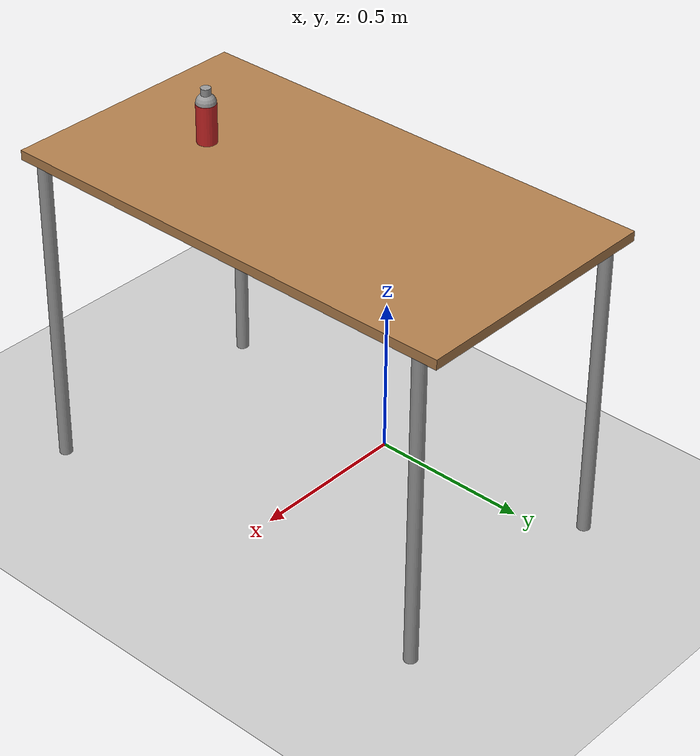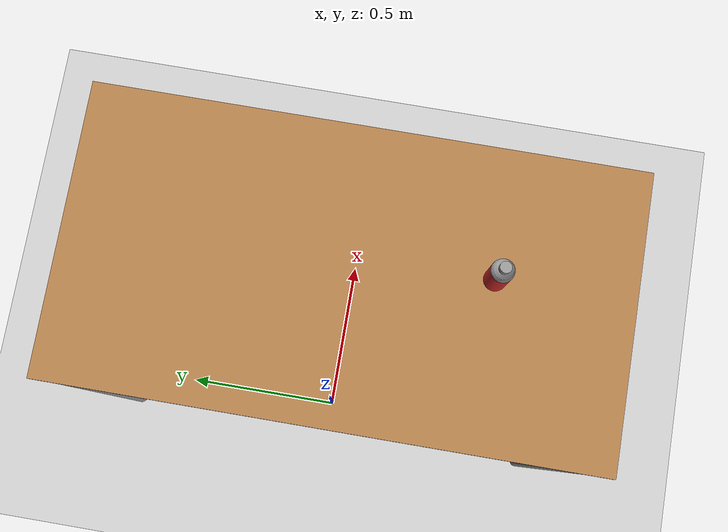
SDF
<?xml version="1.0" ?>
<sdf version="1.6">
  <world name="CRANE-X7 with Table">

    <include>
      <uri>model://sun</uri>
    </include>

    <model name="table">
      <include>
        <uri>model://table</uri>
      </include>

      <!-- X7を机の端に配置するため、机を移動、回転する -->
      <pose>0.29 0 0 0 0 1.5708</pose>
    </model>

    <model name='bottle0'>
      <link name='link_0'>
        <inertial>
          <mass>0.3</mass>
          <inertia>
            <ixx>0.0004275</ixx>
            <ixy>0</ixy>
            <ixz>0</ixz>
            <iyy>0.0004275</iyy>
            <iyz>0</iyz>
            <izz>0.000135</izz>
          </inertia>
          <pose frame=''>0 0 0 0 -0 0</pose>
        </inertial>
        <pose frame=''>0.005 0.0025 -0.002917 0 -0 0</pose>
        <gravity>1</gravity>
        <self_collide>0</self_collide>
        <kinematic>0</kinematic>
        <enable_wind>0</enable_wind>
        <visual name='visual'>
          <pose frame=''>0 0 0 0 -0 0</pose>
          <geometry>
            <cylinder>
              <radius>0.03</radius>
              <length>0.12</length>
            </cylinder>
          </geometry>
          <material>
            <lighting>1</lighting>
            <script>
              <uri>file://media/materials/scripts/gazebo.material</uri>
              <name>Gazebo/RedGlow</name>
            </script>
            <shader type='vertex'>
              <normal_map>__default__</normal_map>
            </shader>
          </material>
          <transparency>0</transparency>
          <cast_shadows>1</cast_shadows>
        </visual>
        <collision name='collision'>
          <laser_retro>0</laser_retro>
          <max_contacts>10</max_contacts>
          <pose frame=''>0 0 0 0 -0 0</pose>
          <geometry>
            <cylinder>
              <radius>0.03</radius>
              <length>0.12</length>
            </cylinder>
          </geometry>
          <surface>
            <friction>
              <ode>
                <mu>1</mu>
                <mu2>1</mu2>
                <fdir1>0 0 0</fdir1>
                <slip1>0</slip1>
                <slip2>0</slip2>
              </ode>
              <torsional>
                <coefficient>1</coefficient>
                <patch_radius>0</patch_radius>
                <surface_radius>0</surface_radius>
                <use_patch_radius>1</use_patch_radius>
                <ode>
                  <slip>0</slip>
                </ode>
              </torsional>
            </friction>
            <bounce>
              <restitution_coefficient>0</restitution_coefficient>
              <threshold>1e+06</threshold>
            </bounce>
            <contact>
              <collide_without_contact>0</collide_without_contact>
              <collide_without_contact_bitmask>1</collide_without_contact_bitmask>
              <collide_bitmask>1</collide_bitmask>
              <ode>
                <soft_cfm>0</soft_cfm>
                <soft_erp>0.2</soft_erp>
                <kp>1e+13</kp>
                <kd>1</kd>
                <max_vel>0.01</max_vel>
                <min_depth>0</min_depth>
              </ode>
              <bullet>
                <split_impulse>1</split_impulse>
                <split_impulse_penetration_threshold>-0.01</split_impulse_penetration_threshold>
                <soft_cfm>0</soft_cfm>
                <soft_erp>0.2</soft_erp>
                <kp>1e+13</kp>
                <kd>1</kd>
              </bullet>
            </contact>
          </surface>
        </collision>
      </link>
      <link name='link_1'>
        <inertial>
          <mass>0.1</mass>
          <inertia>
            <ixx>3.6e-05</ixx>
            <ixy>0</ixy>
            <ixz>0</ixz>
            <iyy>3.6e-05</iyy>
            <iyz>0</iyz>
            <izz>3.6e-05</izz>
          </inertia>
          <pose frame=''>0 0 0 0 -0 0</pose>
        </inertial>
        <pose frame=''>0.005 0.0025 0.058083 0 -0 0</pose>
        <gravity>1</gravity>
        <self_collide>0</self_collide>
        <kinematic>0</kinematic>
        <enable_wind>0</enable_wind>
        <visual name='visual'>
          <pose frame=''>0 0 0 0 -0 0</pose>
          <geometry>
            <sphere>
              <radius>0.03</radius>
            </sphere>
          </geometry>
          <material>
            <lighting>1</lighting>
            <script>
              <uri>file://media/materials/scripts/gazebo.material</uri>
              <name>Gazebo/Grey</name>
            </script>
            <shader type='vertex'>
              <normal_map>__default__</normal_map>
            </shader>
            <ambient>0.3 0.3 0.3 1</ambient>
            <diffuse>0.7 0.7 0.7 1</diffuse>
            <specular>0.01 0.01 0.01 1</specular>
            <emissive>0 0 0 1</emissive>
          </material>
          <transparency>0</transparency>
          <cast_shadows>1</cast_shadows>
        </visual>
        <collision name='collision'>
          <laser_retro>0</laser_retro>
          <max_contacts>10</max_contacts>
          <pose frame=''>0 0 0 0 -0 0</pose>
          <geometry>
            <sphere>
              <radius>0.03</radius>
            </sphere>
          </geometry>
          <surface>
            <friction>
              <ode>
                <mu>1</mu>
                <mu2>1</mu2>
                <fdir1>0 0 0</fdir1>
                <slip1>0</slip1>
                <slip2>0</slip2>
              </ode>
              <torsional>
                <coefficient>1</coefficient>
                <patch_radius>0</patch_radius>
                <surface_radius>0</surface_radius>
                <use_patch_radius>1</use_patch_radius>
                <ode>
                  <slip>0</slip>
                </ode>
              </torsional>
            </friction>
            <bounce>
              <restitution_coefficient>0</restitution_coefficient>
              <threshold>1e+06</threshold>
            </bounce>
            <contact>
              <collide_without_contact>0</collide_without_contact>
              <collide_without_contact_bitmask>1</collide_without_contact_bitmask>
              <collide_bitmask>1</collide_bitmask>
              <ode>
                <soft_cfm>0</soft_cfm>
                <soft_erp>0.2</soft_erp>
                <kp>1e+13</kp>
                <kd>1</kd>
                <max_vel>0.01</max_vel>
                <min_depth>0</min_depth>
              </ode>
              <bullet>
                <split_impulse>1</split_impulse>
                <split_impulse_penetration_threshold>-0.01</split_impulse_penetration_threshold>
                <soft_cfm>0</soft_cfm>
                <soft_erp>0.2</soft_erp>
                <kp>1e+13</kp>
                <kd>1</kd>
              </bullet>
            </contact>
          </surface>
        </collision>
      </link>
      <link name='link_2'>
        <inertial>
          <mass>0.1</mass>
          <inertia>
            <ixx>1.083e-05</ixx>
            <ixy>0</ixy>
            <ixz>0</ixz>
            <iyy>1.083e-05</iyy>
            <iyz>0</iyz>
            <izz>1.125e-05</izz>
          </inertia>
          <pose frame=''>0 0 0 0 -0 0</pose>
        </inertial>
        <pose frame=''>0.005 0.0025 0.092083 0 -0 0</pose>
        <gravity>1</gravity>
        <self_collide>0</self_collide>
        <kinematic>0</kinematic>
        <enable_wind>0</enable_wind>
        <visual name='visual'>
          <pose frame=''>0 0 0 0 -0 0</pose>
          <geometry>
            <cylinder>
              <radius>0.015</radius>
              <length>0.025</length>
            </cylinder>
          </geometry>
          <material>
            <lighting>1</lighting>
            <script>
              <uri>file://media/materials/scripts/gazebo.material</uri>
              <name>Gazebo/Grey</name>
            </script>
            <shader type='vertex'>
              <normal_map>__default__</normal_map>
            </shader>
            <ambient>0.3 0.3 0.3 1</ambient>
            <diffuse>0.7 0.7 0.7 1</diffuse>
            <specular>0.01 0.01 0.01 1</specular>
            <emissive>0 0 0 1</emissive>
          </material>
          <transparency>0</transparency>
          <cast_shadows>1</cast_shadows>
        </visual>
        <collision name='collision'>
          <laser_retro>0</laser_retro>
          <max_contacts>10</max_contacts>
          <pose frame=''>0 0 0 0 -0 0</pose>
          <geometry>
            <cylinder>
              <radius>0.015</radius>
              <length>0.025</length>
            </cylinder>
          </geometry>
          <surface>
            <friction>
              <ode>
                <mu>1</mu>
                <mu2>1</mu2>
                <fdir1>0 0 0</fdir1>
                <slip1>0</slip1>
                <slip2>0</slip2>
              </ode>
              <torsional>
                <coefficient>1</coefficient>
                <patch_radius>0</patch_radius>
                <surface_radius>0</surface_radius>
                <use_patch_radius>1</use_patch_radius>
                <ode>
                  <slip>0</slip>
                </ode>
              </torsional>
            </friction>
            <bounce>
              <restitution_coefficient>0</restitution_coefficient>
              <threshold>1e+06</threshold>
            </bounce>
            <contact>
              <collide_without_contact>0</collide_without_contact>
              <collide_without_contact_bitmask>1</collide_without_contact_bitmask>
              <collide_bitmask>1</collide_bitmask>
              <ode>
                <soft_cfm>0</soft_cfm>
                <soft_erp>0.2</soft_erp>
                <kp>1e+13</kp>
                <kd>1</kd>
                <max_vel>0.01</max_vel>
                <min_depth>0</min_depth>
              </ode>
              <bullet>
                <split_impulse>1</split_impulse>
                <split_impulse_penetration_threshold>-0.01</split_impulse_penetration_threshold>
                <soft_cfm>0</soft_cfm>
                <soft_erp>0.2</soft_erp>
                <kp>1e+13</kp>
                <kd>1</kd>
              </bullet>
            </contact>
          </surface>
        </collision>
      </link>
      <joint name='link_0_JOINT_0' type='fixed'>
        <parent>link_0</parent>
        <child>link_1</child>
        <pose frame=''>0 0 0 0 -0 0</pose>
        <physics>
          <ode>
            <limit>
              <cfm>0</cfm>
              <erp>0.2</erp>
            </limit>
            <suspension>
              <cfm>0</cfm>
              <erp>0.2</erp>
            </suspension>
          </ode>
        </physics>
      </joint>
      <joint name='link_0_JOINT_2' type='fixed'>
        <parent>link_0</parent>
        <child>link_2</child>
        <pose frame=''>0 0 0 0 -0 0</pose>
        <physics>
          <ode>
            <limit>
              <cfm>0</cfm>
              <erp>0.2</erp>
            </limit>
            <suspension>
              <cfm>0</cfm>
              <erp>0.2</erp>
            </suspension>
          </ode>
        </physics>
      </joint>
      <joint name='link_0_JOINT_4' type='fixed'>
        <parent>link_0</parent>
        <child>link_2</child>
        <pose frame=''>0 0 0 0 -0 0</pose>
        <physics>
          <ode>
            <limit>
              <cfm>0</cfm>
              <erp>0.2</erp>
            </limit>
            <suspension>
              <cfm>0</cfm>
              <erp>0.2</erp>
            </suspension>
          </ode>
        </physics>
      </joint>
      <joint name='link_1_JOINT_3' type='fixed'>
        <parent>link_0</parent>
        <child>link_1</child>
        <pose frame=''>0 0 0 0 -0 0</pose>
        <physics>
          <ode>
            <limit>
              <cfm>0</cfm>
              <erp>0.2</erp>
            </limit>
            <suspension>
              <cfm>0</cfm>
              <erp>0.2</erp>
            </suspension>
          </ode>
        </physics>
      </joint>
      <static>0</static>
      <allow_auto_disable>1</allow_auto_disable>
      <pose frame=''>0.33 -0.38 1.1 0 -0 0</pose>
    </model>
    <model name="ground_plane">
      <include>
        <uri>model://ground_plane</uri>
      </include>

      <joint name='ground_joint' type='fixed'>
        <parent>ground_plane::link</parent>
        <child>table::link</child>
      </joint>
    </model>
  </world>
</sdf>

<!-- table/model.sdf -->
<sdf version="1.5">
  <model name="table">
    <static>true</static>
    <link name="link">
      <collision name="surface">
        <pose>0 0 1.0 0 0 0</pose>
        <geometry>
          <box>
            <size>1.5 0.8 0.03</size>
          </box>
        </geometry>
        <surface>
          <friction>
            <ode>
              <mu>0.6</mu>
              <mu2>0.6</mu2>
            </ode>
          </friction>
        </surface>
      </collision>
      <visual name="visual1">
        <pose>0 0 1.0 0 0 0</pose>
        <geometry>
          <box>
            <size>1.5 0.8 0.03</size>
          </box>
        </geometry>
        <material>
          <script>
            <uri>model://media/materials/scripts/gazebo.material</uri>
            <name>Gazebo/Wood</name>
          </script>
        </material>
      </visual>
      <collision name="front_left_leg">
        <pose>0.68 0.38 0.5 0 0 0</pose>
        <geometry>
          <cylinder>
            <radius>0.02</radius>
            <length>1.0</length>
          </cylinder>
        </geometry>
      </collision>
      <visual name="front_left_leg">
        <pose>0.68 0.38 0.5 0 0 0</pose>
        <geometry>
          <cylinder>
            <radius>0.02</radius>
            <length>1.0</length>
          </cylinder>
        </geometry>
        <material>
          <script>
            <uri>model://media/materials/scripts/gazebo.material</uri>
            <name>Gazebo/Grey</name>
          </script>
        </material>
      </visual>
      <collision name="front_right_leg">
        <pose>0.68 -0.38 0.5 0 0 0</pose>
        <geometry>
          <cylinder>
            <radius>0.02</radius>
            <length>1.0</length>
          </cylinder>
        </geometry>
      </collision>
      <visual name="front_right_leg">
        <pose>0.68 -0.38 0.5 0 0 0</pose>
        <geometry>
          <cylinder>
            <radius>0.02</radius>
            <length>1.0</length>
          </cylinder>
        </geometry>
        <material>
          <script>
            <uri>model://media/materials/scripts/gazebo.material</uri>
            <name>Gazebo/Grey</name>
          </script>
        </material>
      </visual>
      <collision name="back_right_leg">
        <pose>-0.68 -0.38 0.5 0 0 0</pose>
        <geometry>
          <cylinder>
            <radius>0.02</radius>
            <length>1.0</length>
          </cylinder>
        </geometry>
      </collision>
      <visual name="back_right_leg">
        <pose>-0.68 -0.38 0.5 0 0 0</pose>
        <geometry>
          <cylinder>
            <radius>0.02</radius>
            <length>1.0</length>
          </cylinder>
        </geometry>
        <material>
          <script>
            <uri>model://media/materials/scripts/gazebo.material</uri>
            <name>Gazebo/Grey</name>
          </script>
        </material>
      </visual>
      <collision name="back_left_leg">
        <pose>-0.68 0.38 0.5 0 0 0</pose>
        <geometry>
          <cylinder>
            <radius>0.02</radius>
            <length>1.0</length>
          </cylinder>
        </geometry>
      </collision>
      <visual name="back_left_leg">
        <pose>-0.68 0.38 0.5 0 0 0</pose>
        <geometry>
          <cylinder>
            <radius>0.02</radius>
            <length>1.0</length>
          </cylinder>
        </geometry>
        <material>
          <script>
            <uri>model://media/materials/scripts/gazebo.material</uri>
            <name>Gazebo/Grey</name>
          </script>
        </material>
      </visual>
    </link>
  </model>
</sdf>
